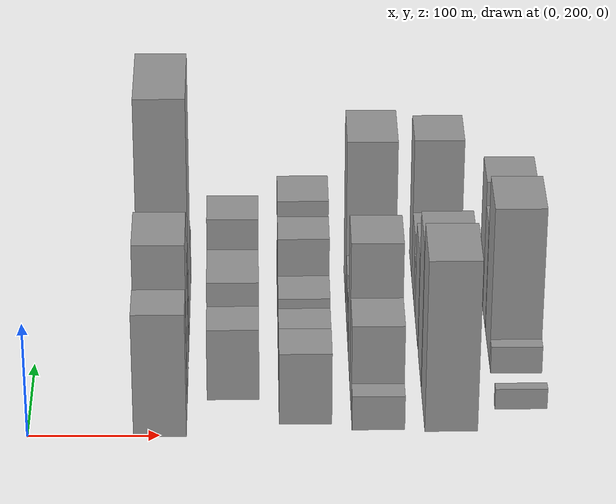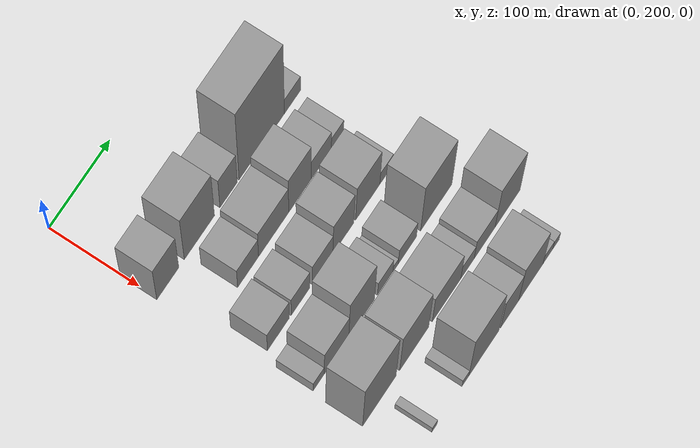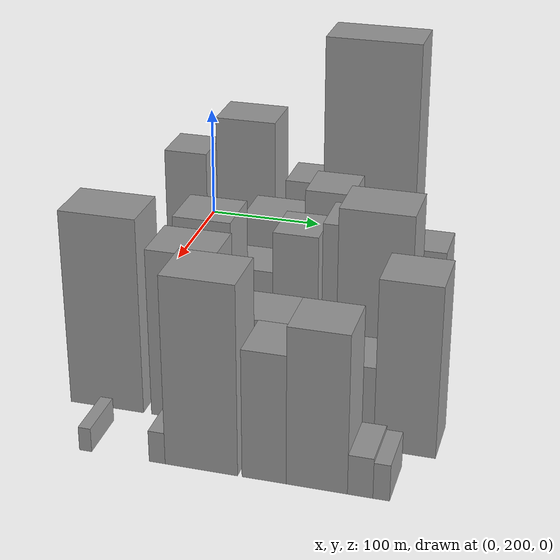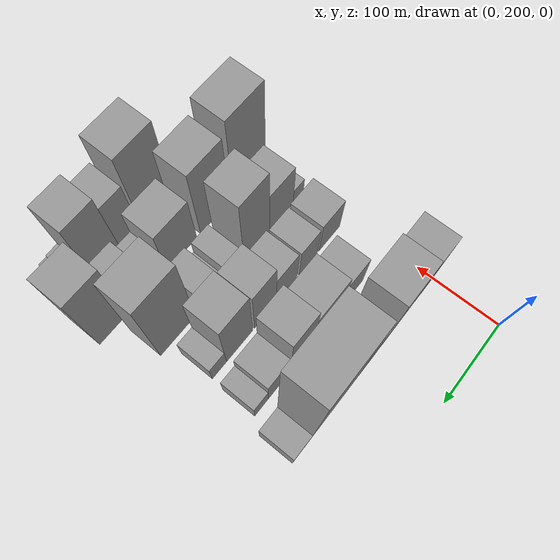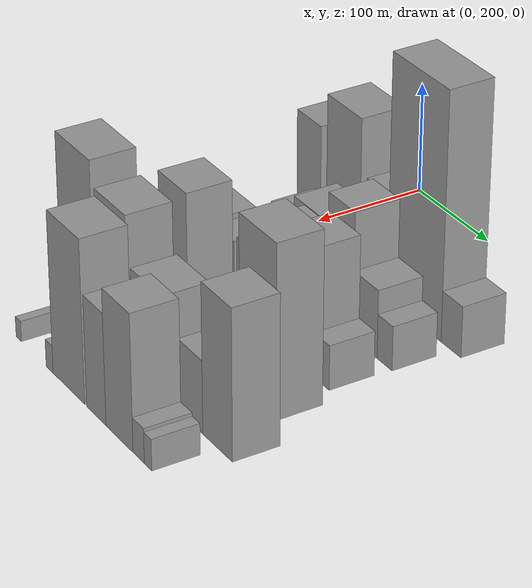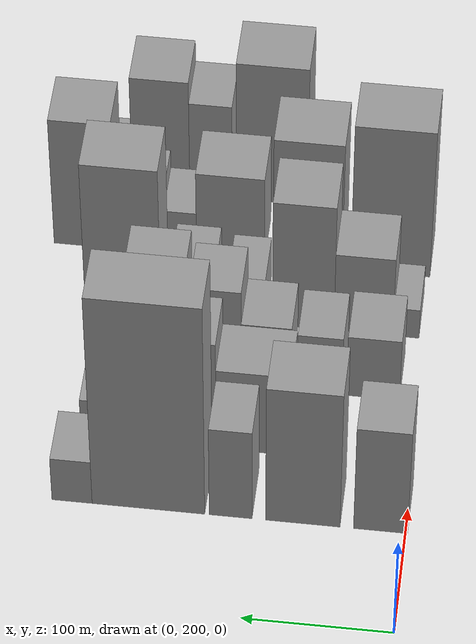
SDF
<sdf version="1.6">
 <world name="default">
  <model name="building_33">
   <static>1</static>
   <pose>100.0000 216.3945 0 0.000000 0.000000 0.000000</pose>
   <link name="link">
    <pose>0 0 54.00 0 0 0</pose>
    <collision name="collision"><geometry><box><size>40.0000 35.8920 108.0000</size></box></geometry></collision>
    <visual name="visual">
     <cast_shadows>0</cast_shadows>
     <geometry><box><size>40.0000 35.8920 108.0000</size></box></geometry>
     <material>
      <script>
       <uri>model://grey_wall/materials/scripts</uri>
       <uri>model://grey_wall/materials/textures</uri>
       <name>vrc/grey_wall</name>
      </script>
     </material>
    </visual>
   </link>
  </model>
  <model name="building_34">
   <static>1</static>
   <pose>100.0000 268.0884 0 0.000000 0.000000 0.000000</pose>
   <link name="link">
    <pose>0 0 70.50 0 0 0</pose>
    <collision name="collision"><geometry><box><size>40.0000 49.4960 141.0000</size></box></geometry></collision>
    <visual name="visual">
     <cast_shadows>0</cast_shadows>
     <geometry><box><size>40.0000 49.4960 141.0000</size></box></geometry>
     <material>
      <script>
       <uri>model://grey_wall/materials/scripts</uri>
       <uri>model://grey_wall/materials/textures</uri>
       <name>vrc/grey_wall</name>
      </script>
     </material>
    </visual>
   </link>
  </model>
  <model name="building_35">
   <static>1</static>
   <pose>100.0000 316.1049 0 0.000000 0.000000 0.000000</pose>
   <link name="link">
    <pose>0 0 46.50 0 0 0</pose>
    <collision name="collision"><geometry><box><size>40.0000 28.5371 93.0000</size></box></geometry></collision>
    <visual name="visual">
     <cast_shadows>0</cast_shadows>
     <geometry><box><size>40.0000 28.5371 93.0000</size></box></geometry>
     <material>
      <script>
       <uri>model://grey_wall/materials/scripts</uri>
       <uri>model://grey_wall/materials/textures</uri>
       <name>vrc/grey_wall</name>
      </script>
     </material>
    </visual>
   </link>
  </model>
  <model name="building_36">
   <static>1</static>
   <pose>100.0000 371.0116 0 0.000000 0.000000 0.000000</pose>
   <link name="link">
    <pose>0 0 108.00 0 0 0</pose>
    <collision name="collision"><geometry><box><size>40.0000 75.2764 216.0000</size></box></geometry></collision>
    <visual name="visual">
     <cast_shadows>0</cast_shadows>
     <geometry><box><size>40.0000 75.2764 216.0000</size></box></geometry>
     <material>
      <script>
       <uri>model://grey_wall/materials/scripts</uri>
       <uri>model://grey_wall/materials/textures</uri>
       <name>vrc/grey_wall</name>
      </script>
     </material>
    </visual>
   </link>
  </model>
  <model name="building_37">
   <static>1</static>
   <pose>100.0000 422.1085 0 0.000000 0.000000 0.000000</pose>
   <link name="link">
    <pose>0 0 22.50 0 0 0</pose>
    <collision name="collision"><geometry><box><size>40.0000 26.9173 45.0000</size></box></geometry></collision>
    <visual name="visual">
     <cast_shadows>0</cast_shadows>
     <geometry><box><size>40.0000 26.9173 45.0000</size></box></geometry>
     <material>
      <script>
       <uri>model://grey_wall/materials/scripts</uri>
       <uri>model://grey_wall/materials/textures</uri>
       <name>vrc/grey_wall</name>
      </script>
     </material>
    </visual>
   </link>
  </model>
  <model name="building_76">
   <static>1</static>
   <pose>155.0000 265.4302 0 0.000000 0.000000 0.000000</pose>
   <link name="link">
    <pose>0 0 31.50 0 0 0</pose>
    <collision name="collision"><geometry><box><size>40.0000 34.4033 63.0000</size></box></geometry></collision>
    <visual name="visual">
     <cast_shadows>0</cast_shadows>
     <geometry><box><size>40.0000 34.4033 63.0000</size></box></geometry>
     <material>
      <script>
       <uri>model://grey_wall/materials/scripts</uri>
       <uri>model://grey_wall/materials/textures</uri>
       <name>vrc/grey_wall</name>
      </script>
     </material>
    </visual>
   </link>
  </model>
  <model name="building_77">
   <static>1</static>
   <pose>155.0000 307.5414 0 0.000000 0.000000 0.000000</pose>
   <link name="link">
    <pose>0 0 42.00 0 0 0</pose>
    <collision name="collision"><geometry><box><size>40.0000 49.8191 84.0000</size></box></geometry></collision>
    <visual name="visual">
     <cast_shadows>0</cast_shadows>
     <geometry><box><size>40.0000 49.8191 84.0000</size></box></geometry>
     <material>
      <script>
       <uri>model://grey_wall/materials/scripts</uri>
       <uri>model://grey_wall/materials/textures</uri>
       <name>vrc/grey_wall</name>
      </script>
     </material>
    </visual>
   </link>
  </model>
  <model name="building_78">
   <static>1</static>
   <pose>155.0000 351.1205 0 0.000000 0.000000 0.000000</pose>
   <link name="link">
    <pose>0 0 55.50 0 0 0</pose>
    <collision name="collision"><geometry><box><size>40.0000 37.3392 111.0000</size></box></geometry></collision>
    <visual name="visual">
     <cast_shadows>0</cast_shadows>
     <geometry><box><size>40.0000 37.3392 111.0000</size></box></geometry>
     <material>
      <script>
       <uri>model://grey_wall/materials/scripts</uri>
       <uri>model://grey_wall/materials/textures</uri>
       <name>vrc/grey_wall</name>
      </script>
     </material>
    </visual>
   </link>
  </model>
  <model name="building_79">
   <static>1</static>
   <pose>155.0000 386.5733 0 0.000000 0.000000 0.000000</pose>
   <link name="link">
    <pose>0 0 30.00 0 0 0</pose>
    <collision name="collision"><geometry><box><size>40.0000 33.5663 60.0000</size></box></geometry></collision>
    <visual name="visual">
     <cast_shadows>0</cast_shadows>
     <geometry><box><size>40.0000 33.5663 60.0000</size></box></geometry>
     <material>
      <script>
       <uri>model://grey_wall/materials/scripts</uri>
       <uri>model://grey_wall/materials/textures</uri>
       <name>vrc/grey_wall</name>
      </script>
     </material>
    </visual>
   </link>
  </model>
  <model name="building_80">
   <static>1</static>
   <pose>155.0000 413.7066 0 0.000000 0.000000 0.000000</pose>
   <link name="link">
    <pose>0 0 19.50 0 0 0</pose>
    <collision name="collision"><geometry><box><size>40.0000 20.7002 39.0000</size></box></geometry></collision>
    <visual name="visual">
     <cast_shadows>0</cast_shadows>
     <geometry><box><size>40.0000 20.7002 39.0000</size></box></geometry>
     <material>
      <script>
       <uri>model://grey_wall/materials/scripts</uri>
       <uri>model://grey_wall/materials/textures</uri>
       <name>vrc/grey_wall</name>
      </script>
     </material>
    </visual>
   </link>
  </model>
  <model name="building_117">
   <static>1</static>
   <pose>210.0000 232.1409 0 0.000000 0.000000 0.000000</pose>
   <link name="link">
    <pose>0 0 31.50 0 0 0</pose>
    <collision name="collision"><geometry><box><size>40.0000 36.0774 63.0000</size></box></geometry></collision>
    <visual name="visual">
     <cast_shadows>0</cast_shadows>
     <geometry><box><size>40.0000 36.0774 63.0000</size></box></geometry>
     <material>
      <script>
       <uri>model://grey_wall/materials/scripts</uri>
       <uri>model://grey_wall/materials/textures</uri>
       <name>vrc/grey_wall</name>
      </script>
     </material>
    </visual>
   </link>
  </model>
  <model name="building_118">
   <static>1</static>
   <pose>210.0000 268.5732 0 0.000000 0.000000 0.000000</pose>
   <link name="link">
    <pose>0 0 30.00 0 0 0</pose>
    <collision name="collision"><geometry><box><size>40.0000 30.7871 60.0000</size></box></geometry></collision>
    <visual name="visual">
     <cast_shadows>0</cast_shadows>
     <geometry><box><size>40.0000 30.7871 60.0000</size></box></geometry>
     <material>
      <script>
       <uri>model://grey_wall/materials/scripts</uri>
       <uri>model://grey_wall/materials/textures</uri>
       <name>vrc/grey_wall</name>
      </script>
     </material>
    </visual>
   </link>
  </model>
  <model name="building_119">
   <static>1</static>
   <pose>210.0000 305.0433 0 0.000000 0.000000 0.000000</pose>
   <link name="link">
    <pose>0 0 33.00 0 0 0</pose>
    <collision name="collision"><geometry><box><size>40.0000 34.1532 66.0000</size></box></geometry></collision>
    <visual name="visual">
     <cast_shadows>0</cast_shadows>
     <geometry><box><size>40.0000 34.1532 66.0000</size></box></geometry>
     <material>
      <script>
       <uri>model://grey_wall/materials/scripts</uri>
       <uri>model://grey_wall/materials/textures</uri>
       <name>vrc/grey_wall</name>
      </script>
     </material>
    </visual>
   </link>
  </model>
  <model name="building_120">
   <static>1</static>
   <pose>210.0000 339.5758 0 0.000000 0.000000 0.000000</pose>
   <link name="link">
    <pose>0 0 49.50 0 0 0</pose>
    <collision name="collision"><geometry><box><size>40.0000 34.9117 99.0000</size></box></geometry></collision>
    <visual name="visual">
     <cast_shadows>0</cast_shadows>
     <geometry><box><size>40.0000 34.9117 99.0000</size></box></geometry>
     <material>
      <script>
       <uri>model://grey_wall/materials/scripts</uri>
       <uri>model://grey_wall/materials/textures</uri>
       <name>vrc/grey_wall</name>
      </script>
     </material>
    </visual>
   </link>
  </model>
  <model name="building_121">
   <static>1</static>
   <pose>210.0000 380.2811 0 0.000000 0.000000 0.000000</pose>
   <link name="link">
    <pose>0 0 55.50 0 0 0</pose>
    <collision name="collision"><geometry><box><size>40.0000 40.4990 111.0000</size></box></geometry></collision>
    <visual name="visual">
     <cast_shadows>0</cast_shadows>
     <geometry><box><size>40.0000 40.4990 111.0000</size></box></geometry>
     <material>
      <script>
       <uri>model://grey_wall/materials/scripts</uri>
       <uri>model://grey_wall/materials/textures</uri>
       <name>vrc/grey_wall</name>
      </script>
     </material>
    </visual>
   </link>
  </model>
  <model name="building_122">
   <static>1</static>
   <pose>210.0000 411.4203 0 0.000000 0.000000 0.000000</pose>
   <link name="link">
    <pose>0 0 19.50 0 0 0</pose>
    <collision name="collision"><geometry><box><size>40.0000 21.7795 39.0000</size></box></geometry></collision>
    <visual name="visual">
     <cast_shadows>0</cast_shadows>
     <geometry><box><size>40.0000 21.7795 39.0000</size></box></geometry>
     <material>
      <script>
       <uri>model://grey_wall/materials/scripts</uri>
       <uri>model://grey_wall/materials/textures</uri>
       <name>vrc/grey_wall</name>
      </script>
     </material>
    </visual>
   </link>
  </model>
  <model name="building_164">
   <static>1</static>
   <pose>265.0000 214.8915 0 0.000000 0.000000 0.000000</pose>
   <link name="link">
    <pose>0 0 15.00 0 0 0</pose>
    <collision name="collision"><geometry><box><size>40.0000 17.9654 30.0000</size></box></geometry></collision>
    <visual name="visual">
     <cast_shadows>0</cast_shadows>
     <geometry><box><size>40.0000 17.9654 30.0000</size></box></geometry>
     <material>
      <script>
       <uri>model://grey_wall/materials/scripts</uri>
       <uri>model://grey_wall/materials/textures</uri>
       <name>vrc/grey_wall</name>
      </script>
     </material>
    </visual>
   </link>
  </model>
  <model name="building_165">
   <static>1</static>
   <pose>265.0000 244.1749 0 0.000000 0.000000 0.000000</pose>
   <link name="link">
    <pose>0 0 40.50 0 0 0</pose>
    <collision name="collision"><geometry><box><size>40.0000 40.6014 81.0000</size></box></geometry></collision>
    <visual name="visual">
     <cast_shadows>0</cast_shadows>
     <geometry><box><size>40.0000 40.6014 81.0000</size></box></geometry>
     <material>
      <script>
       <uri>model://grey_wall/materials/scripts</uri>
       <uri>model://grey_wall/materials/textures</uri>
       <name>vrc/grey_wall</name>
      </script>
     </material>
    </visual>
   </link>
  </model>
  <model name="building_166">
   <static>1</static>
   <pose>265.0000 285.8399 0 0.000000 0.000000 0.000000</pose>
   <link name="link">
    <pose>0 0 64.50 0 0 0</pose>
    <collision name="collision"><geometry><box><size>40.0000 42.7286 129.0000</size></box></geometry></collision>
    <visual name="visual">
     <cast_shadows>0</cast_shadows>
     <geometry><box><size>40.0000 42.7286 129.0000</size></box></geometry>
     <material>
      <script>
       <uri>model://grey_wall/materials/scripts</uri>
       <uri>model://grey_wall/materials/textures</uri>
       <name>vrc/grey_wall</name>
      </script>
     </material>
    </visual>
   </link>
  </model>
  <model name="building_167">
   <static>1</static>
   <pose>265.0000 325.0403 0 0.000000 0.000000 0.000000</pose>
   <link name="link">
    <pose>0 0 22.50 0 0 0</pose>
    <collision name="collision"><geometry><box><size>40.0000 25.6722 45.0000</size></box></geometry></collision>
    <visual name="visual">
     <cast_shadows>0</cast_shadows>
     <geometry><box><size>40.0000 25.6722 45.0000</size></box></geometry>
     <material>
      <script>
       <uri>model://grey_wall/materials/scripts</uri>
       <uri>model://grey_wall/materials/textures</uri>
       <name>vrc/grey_wall</name>
      </script>
     </material>
    </visual>
   </link>
  </model>
  <model name="building_168">
   <static>1</static>
   <pose>265.0000 342.3450 0 0.000000 0.000000 0.000000</pose>
   <link name="link">
    <pose>0 0 10.50 0 0 0</pose>
    <collision name="collision"><geometry><box><size>40.0000 8.9372 21.0000</size></box></geometry></collision>
    <visual name="visual">
     <cast_shadows>0</cast_shadows>
     <geometry><box><size>40.0000 8.9372 21.0000</size></box></geometry>
     <material>
      <script>
       <uri>model://grey_wall/materials/scripts</uri>
       <uri>model://grey_wall/materials/textures</uri>
       <name>vrc/grey_wall</name>
      </script>
     </material>
    </visual>
   </link>
  </model>
  <model name="building_169">
   <static>1</static>
   <pose>265.0000 362.0525 0 0.000000 0.000000 0.000000</pose>
   <link name="link">
    <pose>0 0 25.50 0 0 0</pose>
    <collision name="collision"><geometry><box><size>40.0000 30.4777 51.0000</size></box></geometry></collision>
    <visual name="visual">
     <cast_shadows>0</cast_shadows>
     <geometry><box><size>40.0000 30.4777 51.0000</size></box></geometry>
     <material>
      <script>
       <uri>model://grey_wall/materials/scripts</uri>
       <uri>model://grey_wall/materials/textures</uri>
       <name>vrc/grey_wall</name>
      </script>
     </material>
    </visual>
   </link>
  </model>
  <model name="building_170">
   <static>1</static>
   <pose>265.0000 410.5787 0 0.000000 0.000000 0.000000</pose>
   <link name="link">
    <pose>0 0 75.00 0 0 0</pose>
    <collision name="collision"><geometry><box><size>40.0000 52.5747 150.0000</size></box></geometry></collision>
    <visual name="visual">
     <cast_shadows>0</cast_shadows>
     <geometry><box><size>40.0000 52.5747 150.0000</size></box></geometry>
     <material>
      <script>
       <uri>model://grey_wall/materials/scripts</uri>
       <uri>model://grey_wall/materials/textures</uri>
       <name>vrc/grey_wall</name>
      </script>
     </material>
    </visual>
   </link>
  </model>
  <model name="building_218">
   <static>1</static>
   <pose>320.0000 230.8989 0 0.000000 0.000000 0.000000</pose>
   <link name="link">
    <pose>0 0 75.00 0 0 0</pose>
    <collision name="collision"><geometry><box><size>40.0000 55.2113 150.0000</size></box></geometry></collision>
    <visual name="visual">
     <cast_shadows>0</cast_shadows>
     <geometry><box><size>40.0000 55.2113 150.0000</size></box></geometry>
     <material>
      <script>
       <uri>model://grey_wall/materials/scripts</uri>
       <uri>model://grey_wall/materials/textures</uri>
       <name>vrc/grey_wall</name>
      </script>
     </material>
    </visual>
   </link>
  </model>
  <model name="building_219">
   <static>1</static>
   <pose>320.0000 288.6685 0 0.000000 0.000000 0.000000</pose>
   <link name="link">
    <pose>0 0 64.50 0 0 0</pose>
    <collision name="collision"><geometry><box><size>40.0000 48.3278 129.0000</size></box></geometry></collision>
    <visual name="visual">
     <cast_shadows>0</cast_shadows>
     <geometry><box><size>40.0000 48.3278 129.0000</size></box></geometry>
     <material>
      <script>
       <uri>model://grey_wall/materials/scripts</uri>
       <uri>model://grey_wall/materials/textures</uri>
       <name>vrc/grey_wall</name>
      </script>
     </material>
    </visual>
   </link>
  </model>
  <model name="building_220">
   <static>1</static>
   <pose>320.0000 342.6260 0 0.000000 0.000000 0.000000</pose>
   <link name="link">
    <pose>0 0 43.50 0 0 0</pose>
    <collision name="collision"><geometry><box><size>40.0000 47.5872 87.0000</size></box></geometry></collision>
    <visual name="visual">
     <cast_shadows>0</cast_shadows>
     <geometry><box><size>40.0000 47.5872 87.0000</size></box></geometry>
     <material>
      <script>
       <uri>model://grey_wall/materials/scripts</uri>
       <uri>model://grey_wall/materials/textures</uri>
       <name>vrc/grey_wall</name>
      </script>
     </material>
    </visual>
   </link>
  </model>
  <model name="building_221">
   <static>1</static>
   <pose>320.0000 377.7311 0 0.000000 0.000000 0.000000</pose>
   <link name="link">
    <pose>0 0 22.50 0 0 0</pose>
    <collision name="collision"><geometry><box><size>40.0000 22.6231 45.0000</size></box></geometry></collision>
    <visual name="visual">
     <cast_shadows>0</cast_shadows>
     <geometry><box><size>40.0000 22.6231 45.0000</size></box></geometry>
     <material>
      <script>
       <uri>model://grey_wall/materials/scripts</uri>
       <uri>model://grey_wall/materials/textures</uri>
       <name>vrc/grey_wall</name>
      </script>
     </material>
    </visual>
   </link>
  </model>
  <model name="building_222">
   <static>1</static>
   <pose>320.0000 406.6513 0 0.000000 0.000000 0.000000</pose>
   <link name="link">
    <pose>0 0 31.50 0 0 0</pose>
    <collision name="collision"><geometry><box><size>40.0000 35.2171 63.0000</size></box></geometry></collision>
    <visual name="visual">
     <cast_shadows>0</cast_shadows>
     <geometry><box><size>40.0000 35.2171 63.0000</size></box></geometry>
     <material>
      <script>
       <uri>model://grey_wall/materials/scripts</uri>
       <uri>model://grey_wall/materials/textures</uri>
       <name>vrc/grey_wall</name>
      </script>
     </material>
    </visual>
   </link>
  </model>
  <model name="building_223">
   <static>1</static>
   <pose>320.0000 445.4462 0 0.000000 0.000000 0.000000</pose>
   <link name="link">
    <pose>0 0 64.50 0 0 0</pose>
    <collision name="collision"><geometry><box><size>40.0000 42.3727 129.0000</size></box></geometry></collision>
    <visual name="visual">
     <cast_shadows>0</cast_shadows>
     <geometry><box><size>40.0000 42.3727 129.0000</size></box></geometry>
     <material>
      <script>
       <uri>model://grey_wall/materials/scripts</uri>
       <uri>model://grey_wall/materials/textures</uri>
       <name>vrc/grey_wall</name>
      </script>
     </material>
    </visual>
   </link>
  </model>
  <model name="building_265">
   <static>1</static>
   <pose>375.0000 237.5241 0 0.000000 0.000000 0.000000</pose>
   <link name="link">
    <pose>0 0 9.00 0 0 0</pose>
    <collision name="collision"><geometry><box><size>40.0000 8.8635 18.0000</size></box></geometry></collision>
    <visual name="visual">
     <cast_shadows>0</cast_shadows>
     <geometry><box><size>40.0000 8.8635 18.0000</size></box></geometry>
     <material>
      <script>
       <uri>model://grey_wall/materials/scripts</uri>
       <uri>model://grey_wall/materials/textures</uri>
       <name>vrc/grey_wall</name>
      </script>
     </material>
    </visual>
   </link>
  </model>
  <model name="building_266">
   <static>1</static>
   <pose>375.0000 288.8693 0 0.000000 0.000000 0.000000</pose>
   <link name="link">
    <pose>0 0 12.00 0 0 0</pose>
    <collision name="collision"><geometry><box><size>40.0000 11.2757 24.0000</size></box></geometry></collision>
    <visual name="visual">
     <cast_shadows>0</cast_shadows>
     <geometry><box><size>40.0000 11.2757 24.0000</size></box></geometry>
     <material>
      <script>
       <uri>model://grey_wall/materials/scripts</uri>
       <uri>model://grey_wall/materials/textures</uri>
       <name>vrc/grey_wall</name>
      </script>
     </material>
    </visual>
   </link>
  </model>
  <model name="building_267">
   <static>1</static>
   <pose>375.0000 319.7568 0 0.000000 0.000000 0.000000</pose>
   <link name="link">
    <pose>0 0 70.50 0 0 0</pose>
    <collision name="collision"><geometry><box><size>40.0000 50.4993 141.0000</size></box></geometry></collision>
    <visual name="visual">
     <cast_shadows>0</cast_shadows>
     <geometry><box><size>40.0000 50.4993 141.0000</size></box></geometry>
     <material>
      <script>
       <uri>model://grey_wall/materials/scripts</uri>
       <uri>model://grey_wall/materials/textures</uri>
       <name>vrc/grey_wall</name>
      </script>
     </material>
    </visual>
   </link>
  </model>
  <model name="building_268">
   <static>1</static>
   <pose>375.0000 363.0326 0 0.000000 0.000000 0.000000</pose>
   <link name="link">
    <pose>0 0 48.00 0 0 0</pose>
    <collision name="collision"><geometry><box><size>40.0000 30.0521 96.0000</size></box></geometry></collision>
    <visual name="visual">
     <cast_shadows>0</cast_shadows>
     <geometry><box><size>40.0000 30.0521 96.0000</size></box></geometry>
     <material>
      <script>
       <uri>model://grey_wall/materials/scripts</uri>
       <uri>model://grey_wall/materials/textures</uri>
       <name>vrc/grey_wall</name>
      </script>
     </material>
    </visual>
   </link>
  </model>
  <model name="building_269">
   <static>1</static>
   <pose>375.0000 398.5022 0 0.000000 0.000000 0.000000</pose>
   <link name="link">
    <pose>0 0 58.50 0 0 0</pose>
    <collision name="collision"><geometry><box><size>40.0000 40.8872 117.0000</size></box></geometry></collision>
    <visual name="visual">
     <cast_shadows>0</cast_shadows>
     <geometry><box><size>40.0000 40.8872 117.0000</size></box></geometry>
     <material>
      <script>
       <uri>model://grey_wall/materials/scripts</uri>
       <uri>model://grey_wall/materials/textures</uri>
       <name>vrc/grey_wall</name>
      </script>
     </material>
    </visual>
   </link>
  </model>
  <model name="building_270">
   <static>1</static>
   <pose>375.0000 427.3169 0 0.000000 0.000000 0.000000</pose>
   <link name="link">
    <pose>0 0 15.00 0 0 0</pose>
    <collision name="collision"><geometry><box><size>40.0000 16.7420 30.0000</size></box></geometry></collision>
    <visual name="visual">
     <cast_shadows>0</cast_shadows>
     <geometry><box><size>40.0000 16.7420 30.0000</size></box></geometry>
     <material>
      <script>
       <uri>model://grey_wall/materials/scripts</uri>
       <uri>model://grey_wall/materials/textures</uri>
       <name>vrc/grey_wall</name>
      </script>
     </material>
    </visual>
   </link>
  </model>
  <model name="building_271">
   <static>1</static>
   <pose>375.0000 441.1721 0 0.000000 0.000000 0.000000</pose>
   <link name="link">
    <pose>0 0 13.50 0 0 0</pose>
    <collision name="collision"><geometry><box><size>40.0000 10.9685 27.0000</size></box></geometry></collision>
    <visual name="visual">
     <cast_shadows>0</cast_shadows>
     <geometry><box><size>40.0000 10.9685 27.0000</size></box></geometry>
     <material>
      <script>
       <uri>model://grey_wall/materials/scripts</uri>
       <uri>model://grey_wall/materials/textures</uri>
       <name>vrc/grey_wall</name>
      </script>
     </material>
    </visual>
   </link>
  </model>
 </world>
</sdf>
